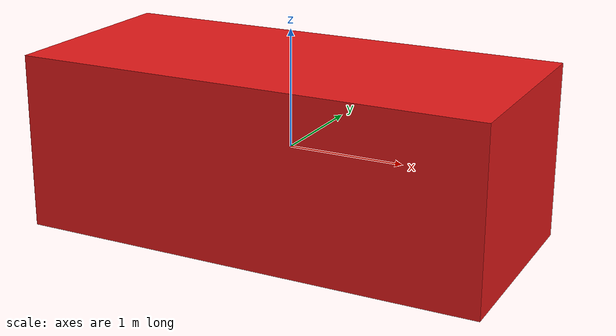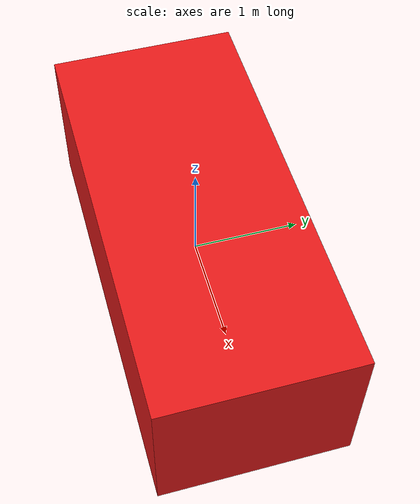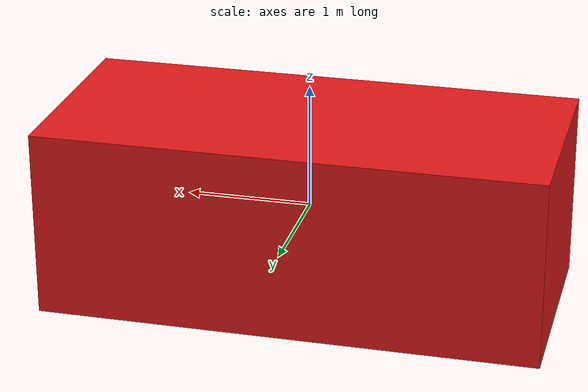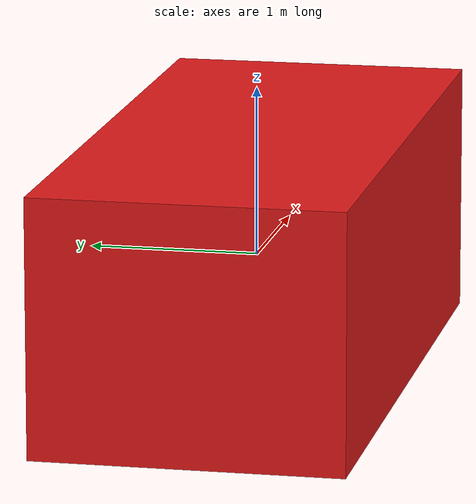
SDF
<?xml version="1.0" ?>
<sdf version="1.6">
  <model name="test_vehicle_box">
    <static>true</static>
    <link name="link">
      <visual name="visual">
        <geometry>
          <box>
            <size>4.0 1.8 1.5</size>
          </box>
        </geometry>
        <material>
          <ambient>0.9 0.1 0.1 1</ambient>
          <diffuse>0.9 0.1 0.1 1</diffuse>
        </material>
      </visual>
    </link>
  </model>
</sdf>
